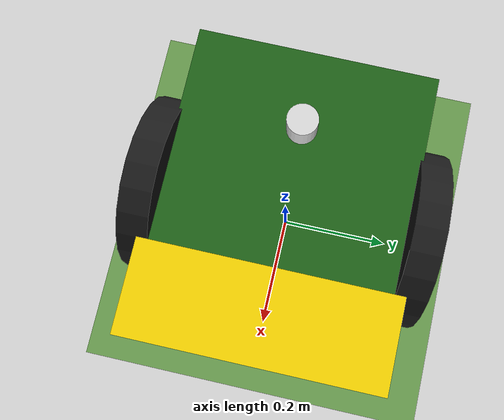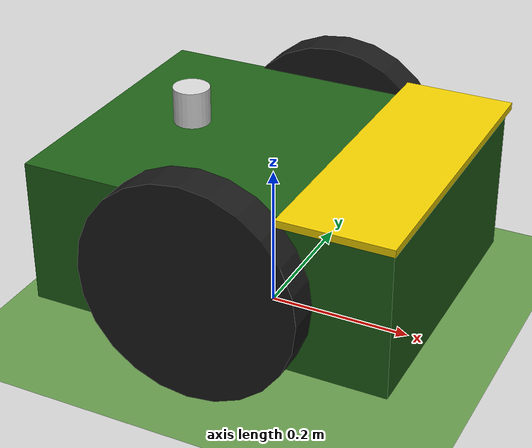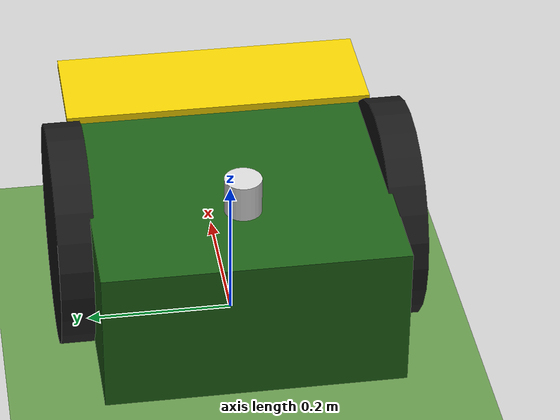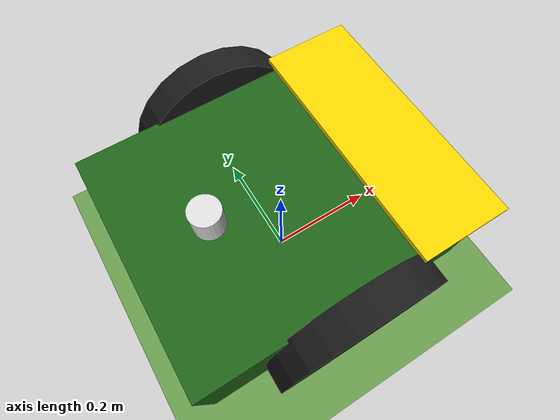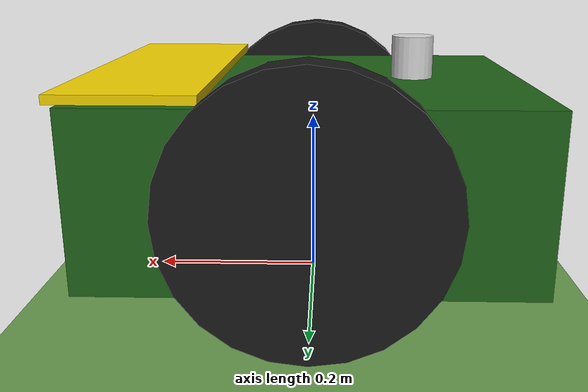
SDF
<?xml version="1.0" ?>
<sdf version="1.8">
  <world name="fusioncore_test">

    <!-- Physics -->
    <physics name="1ms" type="ignored">
      <max_step_size>0.001</max_step_size>
      <real_time_factor>1.0</real_time_factor>
    </physics>

    <!-- Required plugins -->
    <plugin filename="gz-sim-physics-system"
            name="gz::sim::systems::Physics"/>
    <plugin filename="gz-sim-user-commands-system"
            name="gz::sim::systems::UserCommands"/>
    <plugin filename="gz-sim-scene-broadcaster-system"
            name="gz::sim::systems::SceneBroadcaster"/>
    <plugin filename="gz-sim-sensors-system"
            name="gz::sim::systems::Sensors">
      <render_engine>ogre2</render_engine>
    </plugin>
    <plugin filename="gz-sim-imu-system"
            name="gz::sim::systems::Imu"/>

    <!-- GPS origin: Hamilton, Ontario (your location) -->
    <spherical_coordinates>
      <surface_model>EARTH_WGS84</surface_model>
      <latitude_deg>43.2557</latitude_deg>
      <longitude_deg>-79.8711</longitude_deg>
      <elevation>100.0</elevation>
      <heading_deg>0</heading_deg>
    </spherical_coordinates>

    <!-- Lighting -->
    <light name="fusioncore_sun" type="directional">
      <cast_shadows>true</cast_shadows>
      <pose>0 0 10 0 0 0</pose>
      <diffuse>1 1 1 1</diffuse>
      <specular>0.5 0.5 0.5 1</specular>
      <direction>-0.5 0.1 -0.9</direction>
    </light>

    <!-- Ground plane -->
    <model name="ground_plane">
      <static>true</static>
      <link name="link">
        <collision name="collision">
          <geometry><plane><normal>0 0 1</normal><size>100 100</size></plane></geometry>
        </collision>
        <visual name="visual">
          <geometry><plane><normal>0 0 1</normal><size>100 100</size></plane></geometry>
          <material><ambient>0.4 0.6 0.3 1</ambient></material>
        </visual>
      </link>
    </model>

    <!-- The robot -->
    <include>
      <uri>model://fusioncore_robot</uri>
      <pose>0 0 0.15 0 0 0</pose>
    </include>

  </world>
</sdf>

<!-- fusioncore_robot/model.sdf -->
<sdf version="1.8">
  <model name="fusioncore_robot">
    <pose>0 0 0.15 0 0 0</pose>

    <!-- Base link -->
    <link name="base_link">
      <inertial>
        <mass>10.0</mass>
        <inertia>
          <ixx>0.3</ixx><ixy>0</ixy><ixz>0</ixz>
          <iyy>0.3</iyy><iyz>0</iyz>
          <izz>0.4</izz>
        </inertia>
      </inertial>
      <collision name="base_collision">
        <geometry>
          <box><size>0.5 0.4 0.2</size></box>
        </geometry>
      </collision>
      <visual name="base_visual">
        <geometry>
          <box><size>0.5 0.4 0.2</size></box>
        </geometry>
        <material>
          <ambient>0.10 0.35 0.08 1</ambient>
          <diffuse>0.12 0.38 0.09 1</diffuse>
        </material>
      </visual>
      <!-- Yellow accent stripe -->
      <visual name="stripe_visual">
        <pose>0.18 0 0.11 0 0 0</pose>
        <geometry><box><size>0.15 0.42 0.01</size></box></geometry>
        <material><ambient>0.95 0.82 0.0 1</ambient><diffuse>0.95 0.82 0.0 1</diffuse></material>
      </visual>
      <!-- GPS antenna stub -->
      <visual name="gps_antenna_visual">
        <pose>-0.12 0 0.12 0 0 0</pose>
        <geometry><cylinder><radius>0.025</radius><length>0.06</length></cylinder></geometry>
        <material><ambient>0.85 0.85 0.85 1</ambient></material>
      </visual>
    </link>

    <!-- Left wheel -->
    <link name="left_wheel">
      <pose>0 0.22 0 -1.5707 0 0</pose>
      <inertial>
        <mass>1.0</mass>
        <inertia>
          <ixx>0.01</ixx><ixy>0</ixy><ixz>0</ixz>
          <iyy>0.01</iyy><iyz>0</iyz>
          <izz>0.02</izz>
        </inertia>
      </inertial>
      <collision name="left_wheel_collision">
        <geometry><cylinder><radius>0.15</radius><length>0.05</length></cylinder></geometry>
        <surface><friction><ode><mu>1.0</mu><mu2>1.0</mu2></ode></friction></surface>
      </collision>
      <visual name="left_wheel_visual">
        <geometry><cylinder><radius>0.15</radius><length>0.05</length></cylinder></geometry>
        <material><ambient>0.1 0.1 0.1 1</ambient></material>
      </visual>
    </link>

    <!-- Right wheel -->
    <link name="right_wheel">
      <pose>0 -0.22 0 -1.5707 0 0</pose>
      <inertial>
        <mass>1.0</mass>
        <inertia>
          <ixx>0.01</ixx><ixy>0</ixy><ixz>0</ixz>
          <iyy>0.01</iyy><iyz>0</iyz>
          <izz>0.02</izz>
        </inertia>
      </inertial>
      <collision name="right_wheel_collision">
        <geometry><cylinder><radius>0.15</radius><length>0.05</length></cylinder></geometry>
        <surface><friction><ode><mu>1.0</mu><mu2>1.0</mu2></ode></friction></surface>
      </collision>
      <visual name="right_wheel_visual">
        <geometry><cylinder><radius>0.15</radius><length>0.05</length></cylinder></geometry>
        <material><ambient>0.1 0.1 0.1 1</ambient></material>
      </visual>
    </link>

    <!-- Left wheel joint -->
    <joint name="left_wheel_joint" type="revolute">
      <parent>base_link</parent>
      <child>left_wheel</child>
      <axis><xyz>0 0 1</xyz></axis>
    </joint>

    <!-- Right wheel joint -->
    <joint name="right_wheel_joint" type="revolute">
      <parent>base_link</parent>
      <child>right_wheel</child>
      <axis><xyz>0 0 1</xyz></axis>
    </joint>

    <!-- IMU sensor -->
    <link name="imu_link">
      <pose>0 0 0.1 0 0 0</pose>
      <inertial><mass>0.01</mass><inertia><ixx>1e-5</ixx><ixy>0</ixy><ixz>0</ixz><iyy>1e-5</iyy><iyz>0</iyz><izz>1e-5</izz></inertia></inertial>
      <sensor name="imu_sensor" type="imu">
        <always_on>true</always_on>
        <update_rate>100</update_rate>
        <imu>
          <angular_velocity>
            <x><noise type="gaussian"><mean>0</mean><stddev>0.003</stddev></noise></x>
            <y><noise type="gaussian"><mean>0</mean><stddev>0.003</stddev></noise></y>
            <z><noise type="gaussian"><mean>0</mean><stddev>0.003</stddev></noise></z>
          </angular_velocity>
          <linear_acceleration>
            <x><noise type="gaussian"><mean>0</mean><stddev>0.05</stddev></noise></x>
            <y><noise type="gaussian"><mean>0</mean><stddev>0.05</stddev></noise></y>
            <z><noise type="gaussian"><mean>0</mean><stddev>0.05</stddev></noise></z>
          </linear_acceleration>
        </imu>
        <topic>/imu/data</topic>
      </sensor>
    </link>

    <joint name="imu_joint" type="fixed">
      <parent>base_link</parent>
      <child>imu_link</child>
    </joint>

    <!-- 3D LiDAR (Velodyne-class) for the point-cloud map demo. -->
    <link name="lidar_link">
      <pose>0 0 0.35 0 0 0</pose>
      <inertial><mass>0.05</mass><inertia><ixx>1e-4</ixx><ixy>0</ixy><ixz>0</ixz><iyy>1e-4</iyy><iyz>0</iyz><izz>1e-4</izz></inertia></inertial>
      <sensor name="lidar" type="gpu_lidar">
        <always_on>1</always_on>
        <update_rate>8</update_rate>
        <visualize>false</visualize>
        <topic>/lidar/points</topic>
        <lidar>
          <scan>
            <horizontal><samples>512</samples><resolution>1</resolution>
              <min_angle>-3.14159</min_angle><max_angle>3.14159</max_angle></horizontal>
            <vertical><samples>16</samples><resolution>1</resolution>
              <min_angle>-0.436</min_angle><max_angle>0.262</max_angle></vertical>
          </scan>
          <range><min>0.6</min><max>45.0</max><resolution>0.01</resolution></range>
        </lidar>
      </sensor>
    </link>
    <joint name="lidar_joint" type="fixed">
      <parent>base_link</parent>
      <child>lidar_link</child>
    </joint>

    <!-- GPS: use odometry ground truth converted to NavSat in launch file -->
    <!-- NavSat sensor avoided due to gz-sim #2163 bug corrupting coordinates -->

    <!-- Differential drive plugin -->
    <plugin filename="gz-sim-diff-drive-system"
            name="gz::sim::systems::DiffDrive">
      <left_joint>left_wheel_joint</left_joint>
      <right_joint>right_wheel_joint</right_joint>
      <wheel_separation>0.44</wheel_separation>
      <wheel_radius>0.15</wheel_radius>
      <odom_publish_frequency>50</odom_publish_frequency>
      <topic>/cmd_vel</topic>
      <odom_topic>/odom/wheels</odom_topic>
      <frame_id>odom</frame_id>
      <child_frame_id>base_link</child_frame_id>
    </plugin>

  </model>
</sdf>
